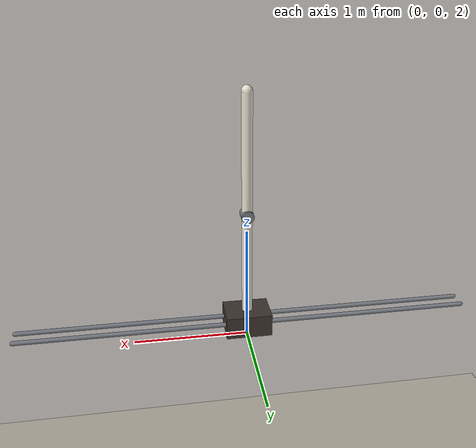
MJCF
<mujoco model="cart-poles">
  <include file="theme.xml"/>
  <option timestep="0.01" integrator="implicitfast">
    <flag contact="disable"/>
  </option>
  <worldbody>
    <camera name="side" pos="0 -5.8 3.1" xyaxes="1 0 0 0 .162 .987" fovy="42"/>
    <geom type="capsule" pos="0 .07 2.15" zaxis="1 0 0" size=".02 2" rgba=".45 .47 .5 1"/>
    <geom type="capsule" pos="0 -.07 2.15" zaxis="1 0 0" size=".02 2" rgba=".45 .47 .5 1"/>
    <body name="cart" pos="0 0 2.15">
      <joint name="slider" type="slide" axis="1 0 0" range="-1.8 1.8" solreflimit=".08 1" damping="5e-4"/>
      <geom type="box" size=".2 .15 .1" mass="1" rgba=".24 .2 .18 1"/>
      <body name="pole_1">
        <joint name="hinge_1" axis="0 1 0" damping="2e-6"/>
        <geom type="cylinder" fromto="0 -.06 0 0 .06 0" size=".053" mass="0" rgba=".45 .47 .5 1"/>
        <geom type="capsule" fromto="0 0 0 0 0 1" size=".045" mass=".1" rgba=".9 .87 .8 1"/>
        <body name="pole_2" pos="0 0 1">
          <joint name="hinge_2" axis="0 1 0" damping="2e-6"/>
          <geom type="cylinder" fromto="0 -.06 0 0 .06 0" size=".053" mass="0" rgba=".45 .47 .5 1"/>
          <geom type="capsule" fromto="0 0 0 0 0 1" size=".045" mass=".1" rgba=".9 .87 .8 1"/>
        </body>
      </body>
    </body>
  </worldbody>
  <actuator>
    <motor name="slide" joint="slider" gear="10" ctrlrange="-1 1"/>
  </actuator>
  <keyframe>
    <key name="hang" qpos="0 3.14159265358979 0"/>
  </keyframe>
</mujoco>

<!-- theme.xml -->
<mujoco>
  <asset>
    <texture name="checker" type="2d" builtin="checker" rgb1=".72 .69 .64" rgb2=".68 .65 .6" width="300" height="300"/>
    <material name="ground" texture="checker" texrepeat=".625 .625" texuniform="true"/>
    <texture name="sky" type="skybox" builtin="flat" rgb1=".47 .45 .42" rgb2=".47 .45 .42" width="32" height="32"/>
  </asset>
  <visual>
    <headlight diffuse=".15 .15 .15" ambient=".3 .3 .3" specular=".2 .2 .2"/>
    <rgba haze=".47 .45 .42 1" fog=".47 .45 .42 1"/>
    <map fogstart="4" fogend="14"/>
    <quality shadowsize="4096" offsamples="8"/>
    <global offwidth="2400" offheight="1800"/>  <!-- offscreen renders match the window -->
  </visual>
  <worldbody>
    <geom name="floor" type="plane" size="0 0 .1" material="ground"/>
    <light name="sun" directional="true" dir="-.7 .5 -.6" pos="3.5 -2.5 5" diffuse=".65 .65 .65" specular=".3 .3 .3"/>
  </worldbody>
</mujoco>
